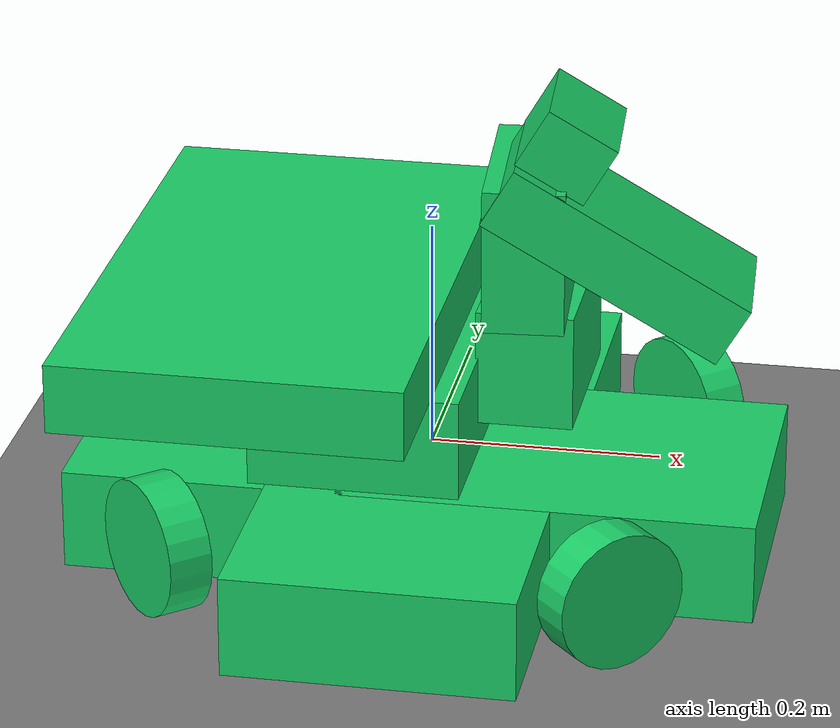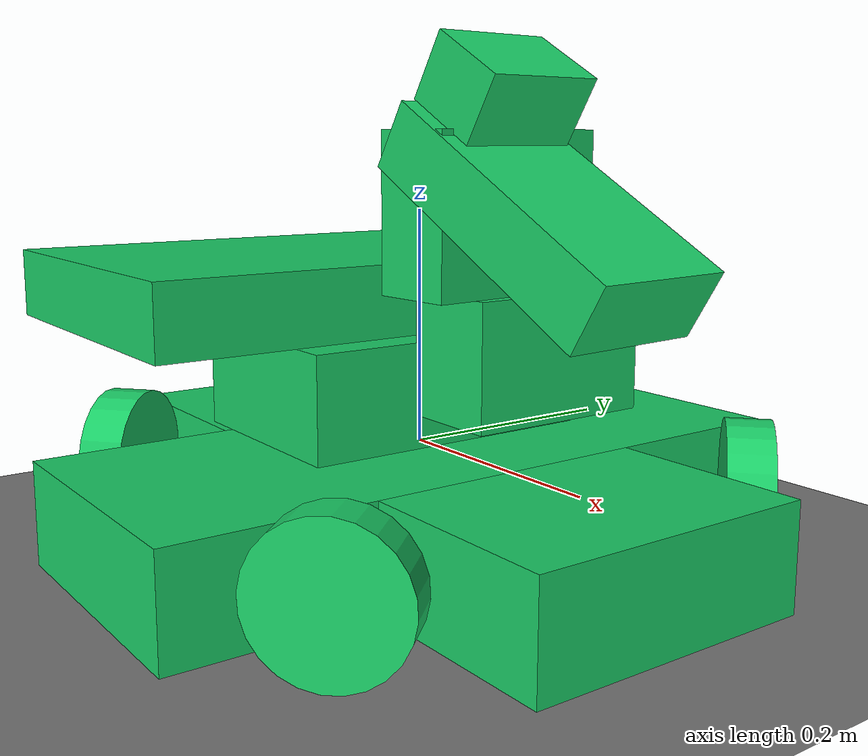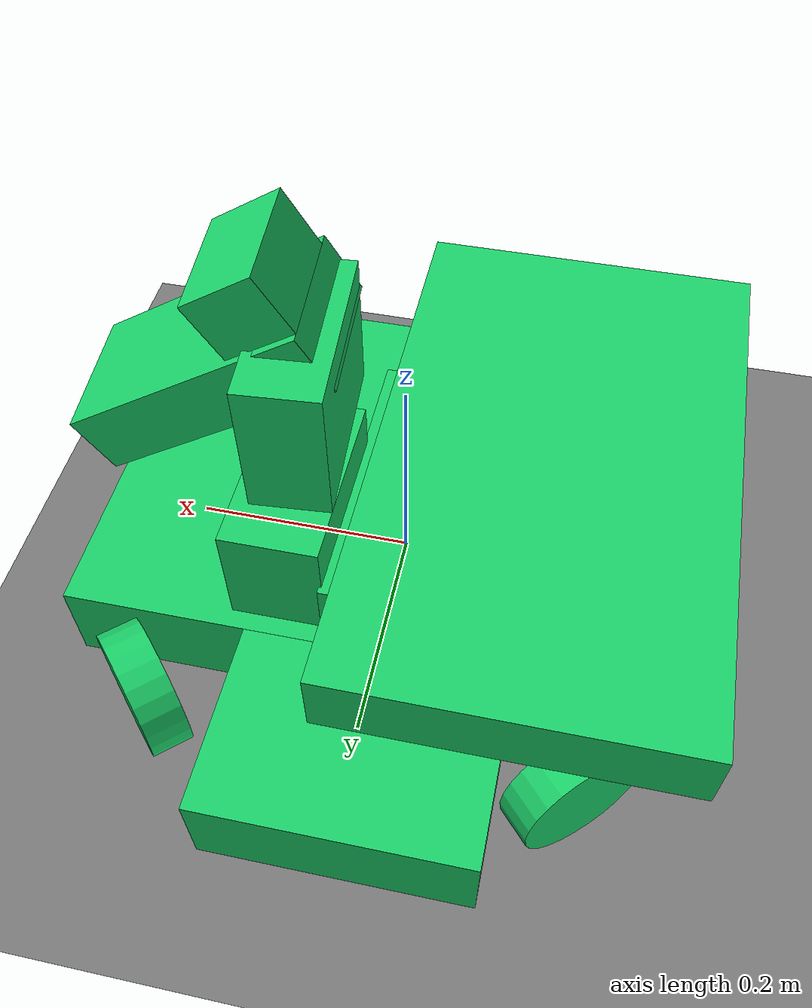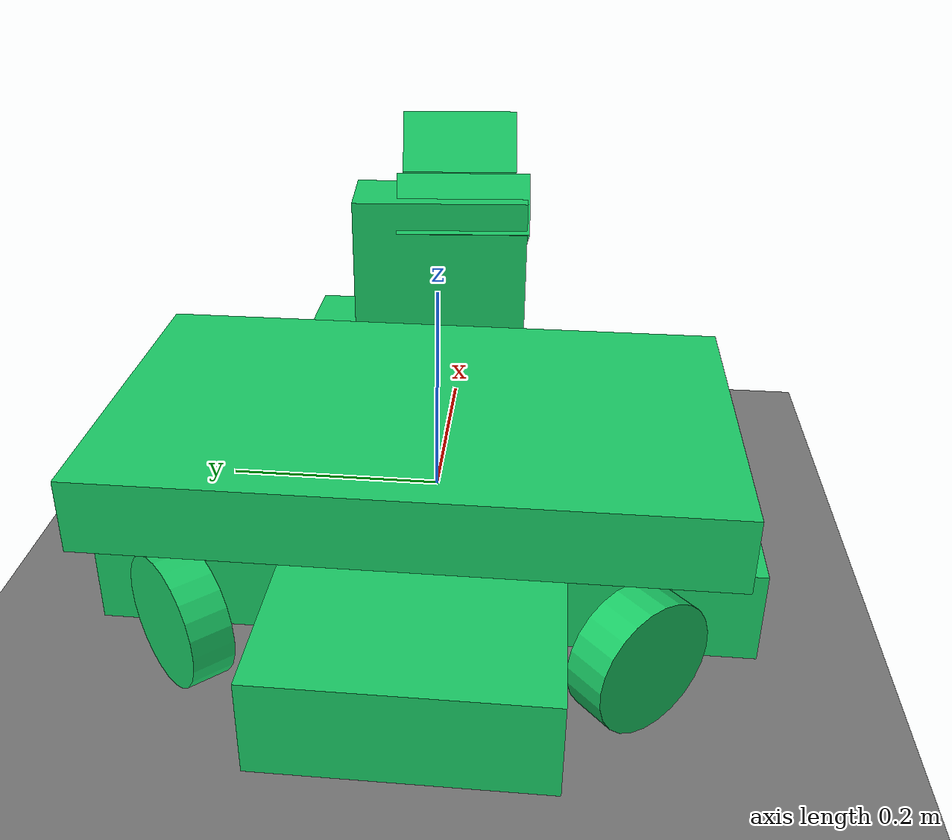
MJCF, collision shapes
<?xml version='1.0' encoding='utf-8'?>
<mujoco model="generated_robot">
  <compiler angle="radian" eulerseq="xyz" autolimits="true" balanceinertia="true" boundinertia="1e-8" />
  <option timestep="0.002" gravity="0 0 -9.81" />
  <visual>
    <headlight ambient="0.35 0.35 0.35" diffuse="0.7 0.7 0.7" specular="0.25 0.25 0.25" />
    <rgba haze="0.15 0.2 0.25 1" />
  </visual>
  <asset>
    <texture name="skybox" type="skybox" builtin="gradient" rgb1="0.55 0.7 0.9" rgb2="0.08 0.12 0.2" width="512" height="512" />
    <texture name="floor_checker" type="2d" builtin="checker" rgb1="0.08 0.08 0.08" rgb2="0.85 0.85 0.85" width="512" height="512" />
    <material name="floor_checker_material" texture="floor_checker" texrepeat="8 8" reflectance="0.05" />
    <mesh name="base_link" file="meshes/base_link.stl" scale="0.001 0.001 0.001" />
    <mesh name="chassia" file="meshes/chassia.obj" scale="0.001 0.001 0.001" />
    <mesh name="left_rear_wheel" file="meshes/left_rear_wheel.stl" scale="0.001 0.001 0.001" />
    <mesh name="left_front_wheel" file="meshes/left_front_wheel.stl" scale="0.001 0.001 0.001" />
    <mesh name="right_front_wheel" file="meshes/right_front_wheel.stl" scale="0.001 0.001 0.001" />
    <mesh name="right_rear_wheel" file="meshes/right_rear_wheel.stl" scale="0.001 0.001 0.001" />
    <mesh name="big_yaw" file="meshes/big_yaw.obj" scale="0.001 0.001 0.001" />
    <mesh name="gimbal_roll" file="meshes/gimbal_roll.stl" scale="0.001 0.001 0.001" />
    <mesh name="little_yaw" file="meshes/little_yaw.stl" scale="0.001 0.001 0.001" />
    <mesh name="gimbal_pitch" file="meshes/gimbal_pitch.stl" scale="0.001 0.001 0.001" />
  </asset>
  <worldbody>
    <light name="key_light" pos="0 0 1.5" dir="0 0 -1" directional="true" diffuse="0.9 0.9 0.9" specular="0.3 0.3 0.3" />
    <light name="fill_light" pos="1 -1 0.8" dir="-1 1 -0.8" directional="true" diffuse="0.45 0.5 0.6" specular="0.1 0.1 0.1" />
    <geom name="ground" type="plane" pos="0 0 -0.0922" size="2 2 0.1" material="floor_checker_material" contype="1" conaffinity="3" />
    <body name="base_link" pos="0 0 0">
      <inertial pos="-9.1095995e-10 2.0456772e-09 0.0013113293" mass="0.023698669" quat="0.99101411 -3.5686859e-08 -1.0085429e-08 0.13375739" diaginertia="6.6503602e-06 6.6503607e-06 1.8885953e-06" />
      <geom name="base_link_mesh_1" type="mesh" mesh="base_link" pos="-0.13624825 -0.11727986 0.25430246" euler="0 0 0" group="1" contype="0" conaffinity="0" />
      <body name="chassia" pos="-0.13624825 -0.11727986 0.25430246">
        <inertial pos="0.13585422 0.12280466 -0.27018295" mass="4.0173922" quat="0.99994796 0.0038440138 -0.00082931316 0.009413901" diaginertia="0.12178401 0.12551831 0.24007783" />
        <geom name="chassia_visual_1" type="mesh" mesh="chassia" pos="0 0 0" euler="0 0 0" group="2" contype="0" conaffinity="0" />
        <geom name="chassia_primitive_1" type="box" pos="0.13625784 0.11899099 -0.29784579" euler="-3.1415927 0 -1.5707963" size="0.29923959 0.12383837 0.044285457" group="3" rgba="0.1 0.8 0.4 0.35" contype="1" conaffinity="1" />
        <geom name="chassia_primitive_2" type="box" pos="0.13481979 0.11711244 -0.29784579" euler="3.1415927 0 -1.5707963" size="0.12581369 0.29923959 0.044285457" group="3" rgba="0.1 0.8 0.4 0.35" contype="1" conaffinity="1" />
        <body name="left_rear_wheel" pos="-0.048784997 0.31775072 -0.28280246" euler="-1.5707963 -0.74537429 0">
          <joint name="left_rear_wheel_joint" type="hinge" pos="0 0 0" axis="0 0 1" actuatorfrcrange="-2.46 2.46" actuatorfrclimited="true" />
          <inertial pos="-0.00074221663 -0.00096037679 -0.0071791335" mass="0.30984103" quat="0.94644807 0.11789972 -0.039106969 -0.29800394" diaginertia="0.00039142559 0.0003267341 0.00052475868" />
          <geom name="left_rear_wheel_visual_1" type="mesh" mesh="left_rear_wheel" pos="-0.17966456 -0.28280246 -0.26658233" euler="1.5707963 0 -0.74537429" group="2" contype="0" conaffinity="0" />
          <geom name="left_rear_wheel_primitive_1" type="cylinder" pos="9.9106425e-09 3.1430381e-09 0.0018506118" euler="-1.0931582e-06 -5.7705465e-07 2.3561952" size="0.060087309 0.019003466" group="3" rgba="0.1 0.8 0.4 0.35" contype="2" conaffinity="0" />
        </body>
        <body name="left_front_wheel" pos="0.33795036 0.30344955 -0.28280246" euler="-1.5707963 0.82542203 0">
          <joint name="left_front_wheel_joint" type="hinge" pos="0 0 0" axis="0 0 1" actuatorfrcrange="-2.46 2.46" actuatorfrclimited="true" />
          <inertial pos="-0.00031370551 -0.0020263378 -0.011348128" mass="0.34631879" quat="0.93049109 0.36583623 -0.016570479 -0.0086955482" diaginertia="0.00062540621 0.00044193362 0.00069147545" />
          <geom name="left_front_wheel_visual_1" type="mesh" mesh="left_front_wheel" pos="-0.0062287092 -0.28280246 -0.45415116" euler="1.5707963 0 0.82542203" group="2" contype="0" conaffinity="0" />
          <geom name="left_front_wheel_primitive_1" type="cylinder" pos="8.6347605e-09 -7.2635356e-10 0.00017539492" euler="3.091856e-08 -2.7585892e-07 2.3561948" size="0.060087307 0.019003089" group="3" rgba="0.1 0.8 0.4 0.35" contype="2" conaffinity="0" />
        </body>
        <body name="right_front_wheel" pos="0.32241593 -0.084472206 -0.28280246" euler="1.5707963 0.74537429 0">
          <joint name="right_front_wheel_joint" type="hinge" pos="0 0 0" axis="0 0 1" actuatorfrcrange="-2.46 2.46" actuatorfrclimited="true" />
          <inertial pos="-0.00077193093 0.00097731205 -0.0089624721" mass="0.34636366" quat="0.94567019 -0.12984257 -0.041272282 0.295204" diaginertia="0.00044728569 0.00036973921 0.0005922549" />
          <geom name="right_front_wheel_visual_1" type="mesh" mesh="right_front_wheel" pos="-0.1796292 0.28280246 -0.28075066" euler="-1.5707963 0 -0.74537429" group="2" contype="0" conaffinity="0" />
          <geom name="right_front_wheel_primitive_1" type="cylinder" pos="4.1625896e-05 -0.0035661333 0.00045356201" euler="0.0026231656 -0.01051644 0.97384298" size="0.06 0.018612897" group="3" rgba="0.1 0.8 0.4 0.35" contype="2" conaffinity="0" />
        </body>
        <body name="right_rear_wheel" pos="-0.065455865 -0.068939779 -0.28280246" euler="1.5707963 -0.82542203 0">
          <joint name="right_rear_wheel_joint" type="hinge" pos="0 0 0" axis="0 0 1" actuatorfrcrange="-2.46 2.46" actuatorfrclimited="true" />
          <inertial pos="0.00019428178 0.00038508755 -0.0077278647" mass="0.30452019" quat="0.99947652 -0.010112405 -0.0015463948 0.030692665" diaginertia="0.00030131282 0.00029413401 0.00046458478" />
          <geom name="right_rear_wheel_visual_1" type="mesh" mesh="right_rear_wheel" pos="-0.0062640628 0.28280246 -0.094857393" euler="-1.5707963 0 0.82542203" group="2" contype="0" conaffinity="0" />
          <geom name="right_rear_wheel_primitive_1" type="cylinder" pos="-0.00097419469 -0.00049220079 -0.0012090854" euler="-3.1390337 0.023682938 1.6542321" size="0.06 0.01962266" group="3" rgba="0.1 0.8 0.4 0.35" contype="2" conaffinity="0" />
        </body>
      </body>
      <body name="big_yaw" pos="-2.8010382e-09 2.8039337e-09 -0.025499999">
        <joint name="big_yaw_joint" type="hinge" pos="0 0 0" axis="0 0 1" actuatorfrcrange="-12 12" actuatorfrclimited="true" />
        <inertial pos="-0.044279538 0.040527542 0.12171991" mass="3.4894807" quat="0.98583199 0.044200947 0.1355557 -0.08835276" diaginertia="0.048835798 0.028343762 0.062350708" />
        <geom name="big_yaw_visual_1" type="mesh" mesh="big_yaw" pos="-0.13624825 -0.11727986 0.27980246" euler="0 0 0" group="2" contype="0" conaffinity="0" />
        <geom name="big_yaw_primitive_1" type="box" pos="-0.044963696 0.0021181449 0.077219023" euler="-3.1415927 0 -1.5707963" size="0.13236161 0.091103678 0.044278705" group="3" rgba="0.1 0.8 0.4 0.35" contype="1" conaffinity="1" />
        <geom name="big_yaw_primitive_2" type="box" pos="-0.12772617 0.00015439254 0.15339876" euler="-3.1415927 0 -1.5707963" size="0.25015217 0.15015562 0.030375591" group="3" rgba="0.1 0.8 0.4 0.35" contype="1" conaffinity="1" />
        <body name="gimbal_roll" pos="0.12227223 0 0.091274346" euler="1.5707963 1.5707963 0">
          <joint name="gimbal_roll_joint" type="hinge" pos="0 0 0" axis="0 0 1" range="0 1.57" limited="true" actuatorfrcrange="-11 11" actuatorfrclimited="true" />
          <inertial pos="-6.9386606e-05 0.044921385 -0.038235052" mass="0.42677618" quat="0.95238075 0.28618812 0.094576908 0.046070388" diaginertia="0.00035692137 0.00032558342 0.0002751817" />
          <geom name="gimbal_roll_visual_1" type="mesh" mesh="gimbal_roll" pos="-0.11727986 0.18852811 -0.25852048" euler="-1.5707963 0 -1.5707963" group="2" contype="0" conaffinity="0" />
          <geom name="gimbal_roll_primitive_1" type="box" pos="0.046826177 0.021250004 -0.036250061" euler="-3.1415927 0 3.1415927" size="0.08182618 0.05125 0.042250061" group="3" rgba="0.1 0.8 0.4 0.35" contype="1" conaffinity="1" />
          <body name="little_yaw" pos="0 0.072 -0.0375" euler="-1.5707963 0 -1.5707963">
            <joint name="little_yaw_joint" type="hinge" pos="0 0 0" axis="0 0 1" range="-0.43633231 0.43633231" limited="true" actuatorfrcrange="-1.8 1.8" actuatorfrclimited="true" />
            <inertial pos="0.0013938478 -0.025760133 0.042991181" mass="0.25284386" quat="0.98754508 0.15283685 -0.020737054 0.031073966" diaginertia="0.00057445398 0.00030100276 0.00039310452" />
            <geom name="little_yaw_visual_1" type="mesh" mesh="little_yaw" pos="-0.22102048 -0.11727986 0.11652811" euler="0 0 0" group="2" contype="0" conaffinity="0" />
            <geom name="little_yaw_primitive_1" type="box" pos="-0.00046041491 0.0060825973 0.064273362" euler="1.5707963 -1.495246 -1.5707963" size="0.063324205 0.079899999 0.035000001" group="3" rgba="0.1 0.8 0.4 0.35" contype="1" conaffinity="1" />
            <body name="gimbal_pitch" pos="-0.0016197667 0.021398784 0.111" euler="1.5707963 0.075550261 0">
              <joint name="gimbal_pitch_joint" type="hinge" pos="0 0 0" axis="0 0 1" range="0 0.87266463" limited="true" actuatorfrcrange="-11 11" actuatorfrclimited="true" />
              <inertial pos="0.07056597 -0.028880793 0.022051865" mass="0.5778237" quat="0.93374893 0.18490777 -0.011894293 -0.30623613" diaginertia="0.0012500499 0.0036215108 0.0032506514" />
              <geom name="gimbal_pitch_visual_1" type="mesh" mesh="gimbal_pitch" pos="-0.2292421 0.0055281105 0.12172304" euler="-1.5707963 0 -0.075550261" group="2" contype="0" conaffinity="0" />
              <geom name="gimbal_pitch_primitive_1" type="box" pos="0.077514776 -0.046105902 0.036411258" euler="1.5707963 1.0387085 0" size="0.028135469 0.061030025 0.11595218" group="3" rgba="0.1 0.8 0.4 0.35" contype="1" conaffinity="1" />
              <geom name="gimbal_pitch_primitive_2" type="box" pos="0.034418794 0.045572502 0.032852563" euler="1.5707963 1.0387085 0" size="0.028135469 0.051911404 0.033533326" group="3" rgba="0.1 0.8 0.4 0.35" contype="1" conaffinity="1" />
            </body>
          </body>
        </body>
      </body>
    </body>
  </worldbody>
  <actuator>
    <motor name="left_rear_wheel_motor" joint="left_rear_wheel_joint" gear="1" ctrlrange="-2.46 2.46" ctrllimited="true" forcerange="-2.46 2.46" forcelimited="true" />
    <motor name="left_front_wheel_motor" joint="left_front_wheel_joint" gear="1" ctrlrange="-2.46 2.46" ctrllimited="true" forcerange="-2.46 2.46" forcelimited="true" />
    <motor name="right_front_wheel_motor" joint="right_front_wheel_joint" gear="1" ctrlrange="-2.46 2.46" ctrllimited="true" forcerange="-2.46 2.46" forcelimited="true" />
    <motor name="right_rear_wheel_motor" joint="right_rear_wheel_joint" gear="1" ctrlrange="-2.46 2.46" ctrllimited="true" forcerange="-2.46 2.46" forcelimited="true" />
    <motor name="big_yaw_motor" joint="big_yaw_joint" gear="1" ctrlrange="-12 12" ctrllimited="true" forcerange="-12 12" forcelimited="true" />
    <motor name="gimbal_roll_motor" joint="gimbal_roll_joint" gear="1" ctrlrange="-11 11" ctrllimited="true" forcerange="-11 11" forcelimited="true" />
    <motor name="little_yaw_motor" joint="little_yaw_joint" gear="1" ctrlrange="-1.8 1.8" ctrllimited="true" forcerange="-1.8 1.8" forcelimited="true" />
    <motor name="gimbal_pitch_motor" joint="gimbal_pitch_joint" gear="1" ctrlrange="-11 11" ctrllimited="true" forcerange="-11 11" forcelimited="true" />
  </actuator>
  <keyframe>
    <key name="home" qpos="0 0 0 0 0 0 0 0" />
  </keyframe>
</mujoco>
